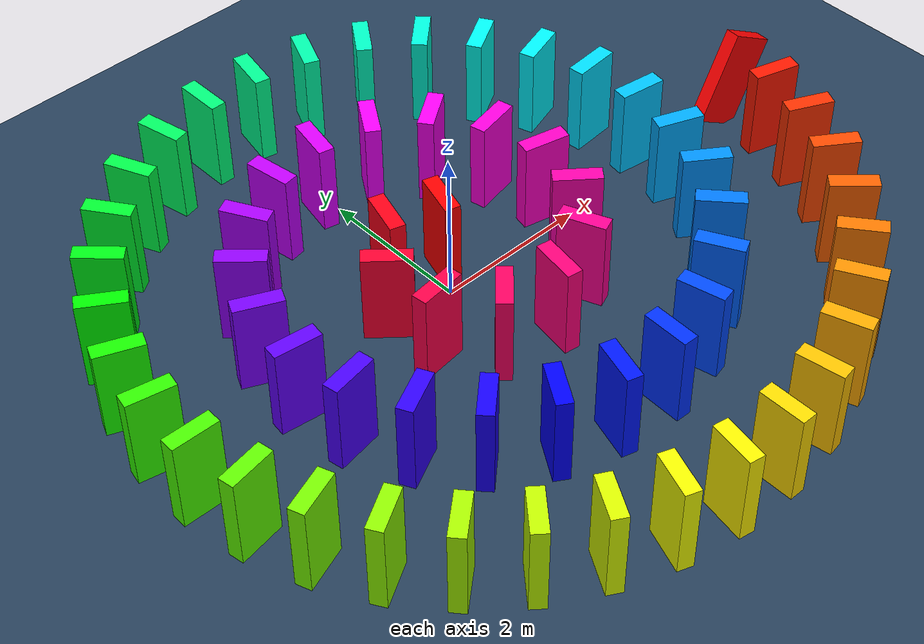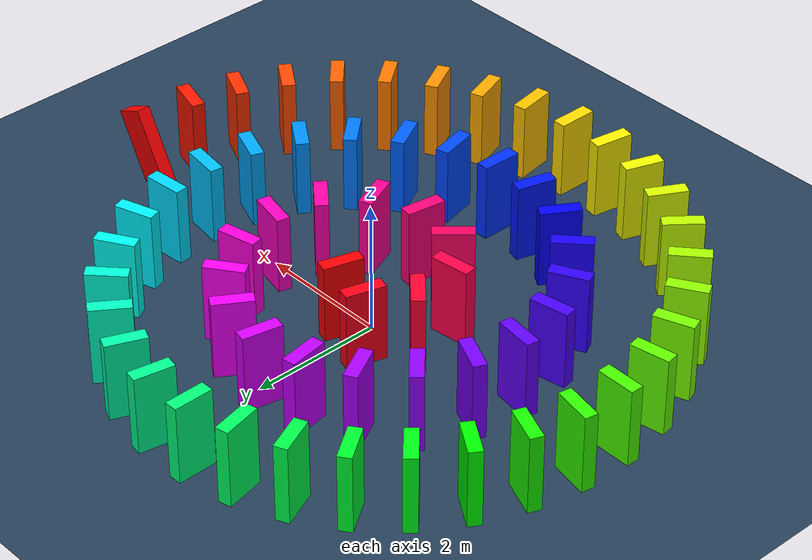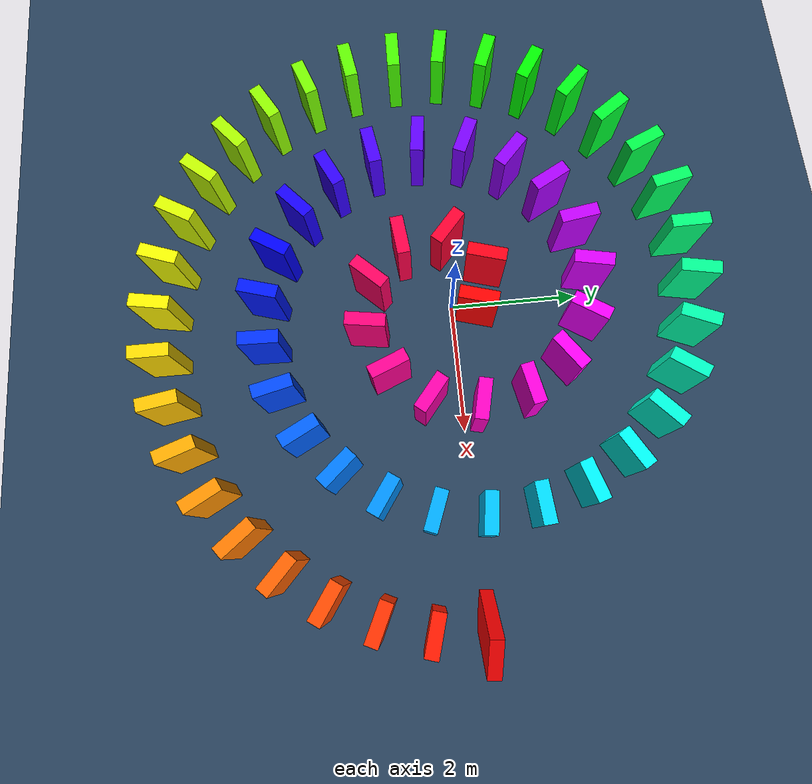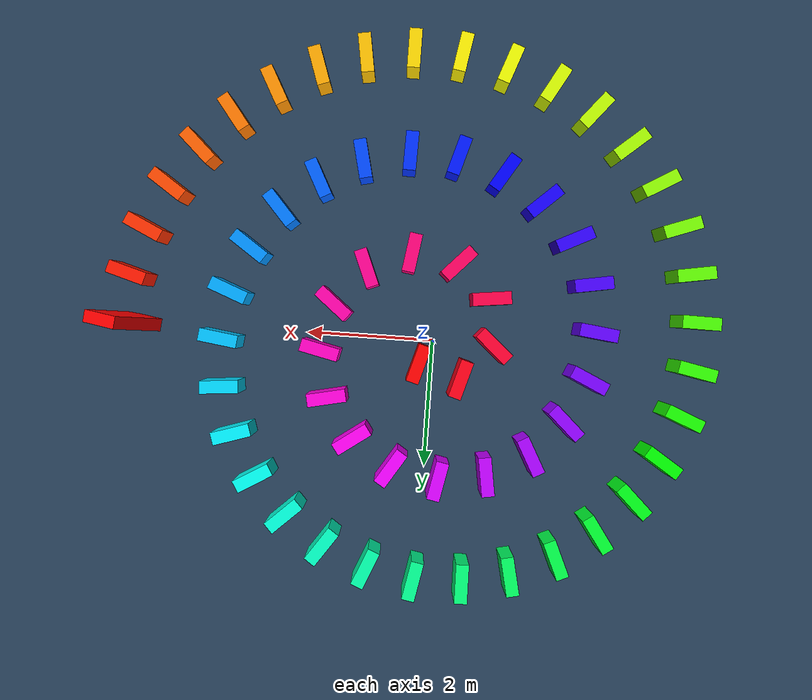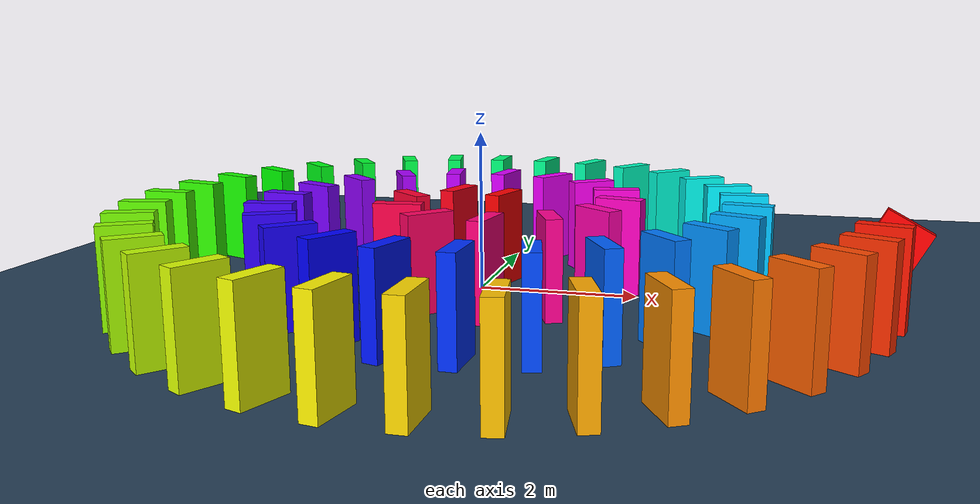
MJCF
<mujoco>
  <visual>
    <headlight diffuse="0.6 0.6 0.6" ambient="0.1 0.1 0.1" specular="0 0 0"/>
    <rgba haze="0.15 0.25 0.35 1"/>
    <global azimuth="120" elevation="-20"/>
  </visual>
  <asset>
    <texture type="skybox" builtin="gradient" rgb1="0.3 0.5 0.7" rgb2="0 0 0" width="512" height="3072"/>
    <texture type="2d" name="groundplane" builtin="checker" mark="edge" rgb1="0.2 0.3 0.4" rgb2="0.1 0.2 0.3" markrgb="0.8 0.8 0.8" width="300" height="300"/>
    <material name="groundplane" texture="groundplane" texuniform="true" texrepeat="5 5" reflectance="0.2"/>
  </asset>
  <worldbody>
    <light pos="0 0 1.5" dir="0 0 -1" directional="true"/>
    <geom name="floor" size="0 0 0.05" type="plane" material="groundplane"/>
    <body name="trigger" pos="4.8624 -0.0000 0.5767" euler="0 28.0 -97.4">
      <geom type="box" size="0.1000 0.3000 0.6000" rgba="1.000 0.000 0.000 1"/>
      <freejoint/>
    </body>
    <body name="domino_001" pos="4.7662 -0.7430 0.6000" euler="0 0.0 -106.3">
      <geom type="box" size="0.1000 0.3000 0.6000" rgba="1.000 0.095 0.000 1"/>
      <freejoint/>
    </body>
    <body name="domino_002" pos="4.5559 -1.4622 0.6000" euler="0 0.0 -115.3">
      <geom type="box" size="0.1000 0.3000 0.6000" rgba="1.000 0.190 0.000 1"/>
      <freejoint/>
    </body>
    <body name="domino_003" pos="4.2358 -2.1396 0.6000" euler="0 0.0 -124.4">
      <geom type="box" size="0.1000 0.3000 0.6000" rgba="1.000 0.286 0.000 1"/>
      <freejoint/>
    </body>
    <body name="domino_004" pos="3.8129 -2.7580 0.6000" euler="0 0.0 -133.5">
      <geom type="box" size="0.1000 0.3000 0.6000" rgba="1.000 0.381 0.000 1"/>
      <freejoint/>
    </body>
    <body name="domino_005" pos="3.2971 -3.3014 0.6000" euler="0 0.0 -142.7">
      <geom type="box" size="0.1000 0.3000 0.6000" rgba="1.000 0.476 0.000 1"/>
      <freejoint/>
    </body>
    <body name="domino_006" pos="2.7009 -3.7551 0.6000" euler="0 0.0 -152.0">
      <geom type="box" size="0.1000 0.3000 0.6000" rgba="1.000 0.571 0.000 1"/>
      <freejoint/>
    </body>
    <body name="domino_007" pos="2.0393 -4.1064 0.6000" euler="0 0.0 -161.4">
      <geom type="box" size="0.1000 0.3000 0.6000" rgba="1.000 0.667 0.000 1"/>
      <freejoint/>
    </body>
    <body name="domino_008" pos="1.3292 -4.3452 0.6000" euler="0 0.0 -170.9">
      <geom type="box" size="0.1000 0.3000 0.6000" rgba="1.000 0.762 0.000 1"/>
      <freejoint/>
    </body>
    <body name="domino_009" pos="0.5895 -4.4638 0.6000" euler="0 0.0 179.6">
      <geom type="box" size="0.1000 0.3000 0.6000" rgba="1.000 0.857 0.000 1"/>
      <freejoint/>
    </body>
    <body name="domino_010" pos="-0.1596 -4.4579 0.6000" euler="0 0.0 169.9">
      <geom type="box" size="0.1000 0.3000 0.6000" rgba="1.000 0.952 0.000 1"/>
      <freejoint/>
    </body>
    <body name="domino_011" pos="-0.8971 -4.3265 0.6000" euler="0 0.0 160.2">
      <geom type="box" size="0.1000 0.3000 0.6000" rgba="0.952 1.000 0.000 1"/>
      <freejoint/>
    </body>
    <body name="domino_012" pos="-1.6018 -4.0723 0.6000" euler="0 0.0 150.3">
      <geom type="box" size="0.1000 0.3000 0.6000" rgba="0.857 1.000 0.000 1"/>
      <freejoint/>
    </body>
    <body name="domino_013" pos="-2.2526 -3.7015 0.6000" euler="0 0.0 140.4">
      <geom type="box" size="0.1000 0.3000 0.6000" rgba="0.762 1.000 0.000 1"/>
      <freejoint/>
    </body>
    <body name="domino_014" pos="-2.8297 -3.2239 0.6000" euler="0 0.0 130.4">
      <geom type="box" size="0.1000 0.3000 0.6000" rgba="0.667 1.000 0.000 1"/>
      <freejoint/>
    </body>
    <body name="domino_015" pos="-3.3147 -2.6531 0.6000" euler="0 0.0 120.2">
      <geom type="box" size="0.1000 0.3000 0.6000" rgba="0.571 1.000 0.000 1"/>
      <freejoint/>
    </body>
    <body name="domino_016" pos="-3.6917 -2.0059 0.6000" euler="0 0.0 110.0">
      <geom type="box" size="0.1000 0.3000 0.6000" rgba="0.476 1.000 0.000 1"/>
      <freejoint/>
    </body>
    <body name="domino_017" pos="-3.9475 -1.3019 0.6000" euler="0 0.0 99.6">
      <geom type="box" size="0.1000 0.3000 0.6000" rgba="0.381 1.000 0.000 1"/>
      <freejoint/>
    </body>
    <body name="domino_018" pos="-4.0726 -0.5635 0.6000" euler="0 0.0 89.1">
      <geom type="box" size="0.1000 0.3000 0.6000" rgba="0.286 1.000 0.000 1"/>
      <freejoint/>
    </body>
    <body name="domino_019" pos="-4.0614 0.1854 0.6000" euler="0 0.0 78.6">
      <geom type="box" size="0.1000 0.3000 0.6000" rgba="0.190 1.000 0.000 1"/>
      <freejoint/>
    </body>
    <body name="domino_020" pos="-3.9127 0.9194 0.6000" euler="0 0.0 67.8">
      <geom type="box" size="0.1000 0.3000 0.6000" rgba="0.095 1.000 0.000 1"/>
      <freejoint/>
    </body>
    <body name="domino_021" pos="-3.6303 1.6130 0.6000" euler="0 0.0 57.0">
      <geom type="box" size="0.1000 0.3000 0.6000" rgba="0.000 1.000 0.000 1"/>
      <freejoint/>
    </body>
    <body name="domino_022" pos="-3.2224 2.2410 0.6000" euler="0 0.0 46.0">
      <geom type="box" size="0.1000 0.3000 0.6000" rgba="0.000 1.000 0.095 1"/>
      <freejoint/>
    </body>
    <body name="domino_023" pos="-2.7025 2.7800 0.6000" euler="0 0.0 34.9">
      <geom type="box" size="0.1000 0.3000 0.6000" rgba="0.000 1.000 0.190 1"/>
      <freejoint/>
    </body>
    <body name="domino_024" pos="-2.0886 3.2087 0.6000" euler="0 0.0 23.7">
      <geom type="box" size="0.1000 0.3000 0.6000" rgba="0.000 1.000 0.286 1"/>
      <freejoint/>
    </body>
    <body name="domino_025" pos="-1.4028 3.5094 0.6000" euler="0 0.0 12.3">
      <geom type="box" size="0.1000 0.3000 0.6000" rgba="0.000 1.000 0.381 1"/>
      <freejoint/>
    </body>
    <body name="domino_026" pos="-0.6712 3.6686 0.6000" euler="0 0.0 0.7">
      <geom type="box" size="0.1000 0.3000 0.6000" rgba="0.000 1.000 0.476 1"/>
      <freejoint/>
    </body>
    <body name="domino_027" pos="0.0775 3.6782 0.6000" euler="0 0.0 -11.0">
      <geom type="box" size="0.1000 0.3000 0.6000" rgba="0.000 1.000 0.571 1"/>
      <freejoint/>
    </body>
    <body name="domino_028" pos="0.8125 3.5357 0.6000" euler="0 0.0 -22.8">
      <geom type="box" size="0.1000 0.3000 0.6000" rgba="0.000 1.000 0.667 1"/>
      <freejoint/>
    </body>
    <body name="domino_029" pos="1.5024 3.2450 0.6000" euler="0 0.0 -34.9">
      <geom type="box" size="0.1000 0.3000 0.6000" rgba="0.000 1.000 0.762 1"/>
      <freejoint/>
    </body>
    <body name="domino_030" pos="2.1164 2.8167 0.6000" euler="0 0.0 -47.1">
      <geom type="box" size="0.1000 0.3000 0.6000" rgba="0.000 1.000 0.857 1"/>
      <freejoint/>
    </body>
    <body name="domino_031" pos="2.6257 2.2682 0.6000" euler="0 0.0 -59.5">
      <geom type="box" size="0.1000 0.3000 0.6000" rgba="0.000 1.000 0.952 1"/>
      <freejoint/>
    </body>
    <body name="domino_032" pos="3.0051 1.6230 0.6000" euler="0 0.0 -72.2">
      <geom type="box" size="0.1000 0.3000 0.6000" rgba="0.000 0.952 1.000 1"/>
      <freejoint/>
    </body>
    <body name="domino_033" pos="3.2345 0.9105 0.6000" euler="0 0.0 -85.0">
      <geom type="box" size="0.1000 0.3000 0.6000" rgba="0.000 0.857 1.000 1"/>
      <freejoint/>
    </body>
    <body name="domino_034" pos="3.3000 0.1650 0.6000" euler="0 0.0 -98.0">
      <geom type="box" size="0.1000 0.3000 0.6000" rgba="0.000 0.762 1.000 1"/>
      <freejoint/>
    </body>
    <body name="domino_035" pos="3.1955 -0.5760 0.6000" euler="0 0.0 -111.3">
      <geom type="box" size="0.1000 0.3000 0.6000" rgba="0.000 0.667 1.000 1"/>
      <freejoint/>
    </body>
    <body name="domino_036" pos="2.9237 -1.2732 0.6000" euler="0 0.0 -124.8">
      <geom type="box" size="0.1000 0.3000 0.6000" rgba="0.000 0.571 1.000 1"/>
      <freejoint/>
    </body>
    <body name="domino_037" pos="2.4965 -1.8875 0.6000" euler="0 0.0 -138.6">
      <geom type="box" size="0.1000 0.3000 0.6000" rgba="0.000 0.476 1.000 1"/>
      <freejoint/>
    </body>
    <body name="domino_038" pos="1.9354 -2.3824 0.6000" euler="0 0.0 -152.6">
      <geom type="box" size="0.1000 0.3000 0.6000" rgba="0.000 0.381 1.000 1"/>
      <freejoint/>
    </body>
    <body name="domino_039" pos="1.2710 -2.7262 0.6000" euler="0 0.0 -167.0">
      <geom type="box" size="0.1000 0.3000 0.6000" rgba="0.000 0.286 1.000 1"/>
      <freejoint/>
    </body>
    <body name="domino_040" pos="0.5423 -2.8948 0.6000" euler="0 0.0 178.4">
      <geom type="box" size="0.1000 0.3000 0.6000" rgba="0.000 0.191 1.000 1"/>
      <freejoint/>
    </body>
    <body name="domino_041" pos="-0.2054 -2.8737 0.6000" euler="0 0.0 163.4">
      <geom type="box" size="0.1000 0.3000 0.6000" rgba="0.000 0.095 1.000 1"/>
      <freejoint/>
    </body>
    <body name="domino_042" pos="-0.9220 -2.6602 0.6000" euler="0 0.0 148.1">
      <geom type="box" size="0.1000 0.3000 0.6000" rgba="0.000 0.000 1.000 1"/>
      <freejoint/>
    </body>
    <body name="domino_043" pos="-1.5567 -2.2649 0.6000" euler="0 0.0 132.4">
      <geom type="box" size="0.1000 0.3000 0.6000" rgba="0.095 0.000 1.000 1"/>
      <freejoint/>
    </body>
    <body name="domino_044" pos="-2.0607 -1.7128 0.6000" euler="0 0.0 116.3">
      <geom type="box" size="0.1000 0.3000 0.6000" rgba="0.190 0.000 1.000 1"/>
      <freejoint/>
    </body>
    <body name="domino_045" pos="-2.3916 -1.0425 0.6000" euler="0 0.0 99.7">
      <geom type="box" size="0.1000 0.3000 0.6000" rgba="0.286 0.000 1.000 1"/>
      <freejoint/>
    </body>
    <body name="domino_046" pos="-2.5179 -0.3059 0.6000" euler="0 0.0 82.7">
      <geom type="box" size="0.1000 0.3000 0.6000" rgba="0.381 0.000 1.000 1"/>
      <freejoint/>
    </body>
    <body name="domino_047" pos="-2.4230 0.4352 0.6000" euler="0 0.0 65.2">
      <geom type="box" size="0.1000 0.3000 0.6000" rgba="0.476 0.000 1.000 1"/>
      <freejoint/>
    </body>
    <body name="domino_048" pos="-2.1091 1.1130 0.6000" euler="0 0.0 47.0">
      <geom type="box" size="0.1000 0.3000 0.6000" rgba="0.571 0.000 1.000 1"/>
      <freejoint/>
    </body>
    <body name="domino_049" pos="-1.6002 1.6595 0.6000" euler="0 0.0 28.3">
      <geom type="box" size="0.1000 0.3000 0.6000" rgba="0.667 0.000 1.000 1"/>
      <freejoint/>
    </body>
    <body name="domino_050" pos="-0.9428 2.0132 0.6000" euler="0 0.0 8.8">
      <geom type="box" size="0.1000 0.3000 0.6000" rgba="0.762 0.000 1.000 1"/>
      <freejoint/>
    </body>
    <body name="domino_051" pos="-0.2053 2.1277 0.6000" euler="0 0.0 -11.4">
      <geom type="box" size="0.1000 0.3000 0.6000" rgba="0.857 0.000 1.000 1"/>
      <freejoint/>
    </body>
    <body name="domino_052" pos="0.5258 1.9800 0.6000" euler="0 0.0 -32.6">
      <geom type="box" size="0.1000 0.3000 0.6000" rgba="0.952 0.000 1.000 1"/>
      <freejoint/>
    </body>
    <body name="domino_053" pos="1.1542 1.5787 0.6000" euler="0 0.0 -54.7">
      <geom type="box" size="0.1000 0.3000 0.6000" rgba="1.000 0.000 0.952 1"/>
      <freejoint/>
    </body>
    <body name="domino_054" pos="1.5846 0.9705 0.6000" euler="0 0.0 -78.1">
      <geom type="box" size="0.1000 0.3000 0.6000" rgba="1.000 0.000 0.857 1"/>
      <freejoint/>
    </body>
    <body name="domino_055" pos="1.7386 0.2421 0.6000" euler="0 0.0 -102.8">
      <geom type="box" size="0.1000 0.3000 0.6000" rgba="1.000 0.000 0.762 1"/>
      <freejoint/>
    </body>
    <body name="domino_056" pos="1.5738 -0.4833 0.6000" euler="0 0.0 -129.2">
      <geom type="box" size="0.1000 0.3000 0.6000" rgba="1.000 0.000 0.667 1"/>
      <freejoint/>
    </body>
    <body name="domino_057" pos="1.1040 -1.0588 0.6000" euler="0 0.0 -157.7">
      <geom type="box" size="0.1000 0.3000 0.6000" rgba="1.000 0.000 0.571 1"/>
      <freejoint/>
    </body>
    <body name="domino_058" pos="0.4178 -1.3400 0.6000" euler="0 0.0 171.1">
      <geom type="box" size="0.1000 0.3000 0.6000" rgba="1.000 0.000 0.476 1"/>
      <freejoint/>
    </body>
    <body name="domino_059" pos="-0.3132 -1.2262 0.6000" euler="0 0.0 136.5">
      <geom type="box" size="0.1000 0.3000 0.6000" rgba="1.000 0.000 0.381 1"/>
      <freejoint/>
    </body>
    <body name="domino_060" pos="-0.8476 -0.7185 0.6000" euler="0 0.0 96.7">
      <geom type="box" size="0.1000 0.3000 0.6000" rgba="1.000 0.000 0.286 1"/>
      <freejoint/>
    </body>
    <body name="domino_061" pos="-0.9330 0.0090 0.6000" euler="0 0.0 48.7">
      <geom type="box" size="0.1000 0.3000 0.6000" rgba="1.000 0.000 0.191 1"/>
      <freejoint/>
    </body>
    <body name="domino_062" pos="-0.4556 0.5515 0.6000" euler="0 0.0 -16.4">
      <geom type="box" size="0.1000 0.3000 0.6000" rgba="1.000 0.000 0.095 1"/>
      <freejoint/>
    </body>
    <body name="domino_063" pos="0.2060 0.3565 0.6000" euler="0 0.0 -16.4">
      <geom type="box" size="0.1000 0.3000 0.6000" rgba="1.000 0.000 0.000 1"/>
      <freejoint/>
    </body>
  </worldbody>
</mujoco>
